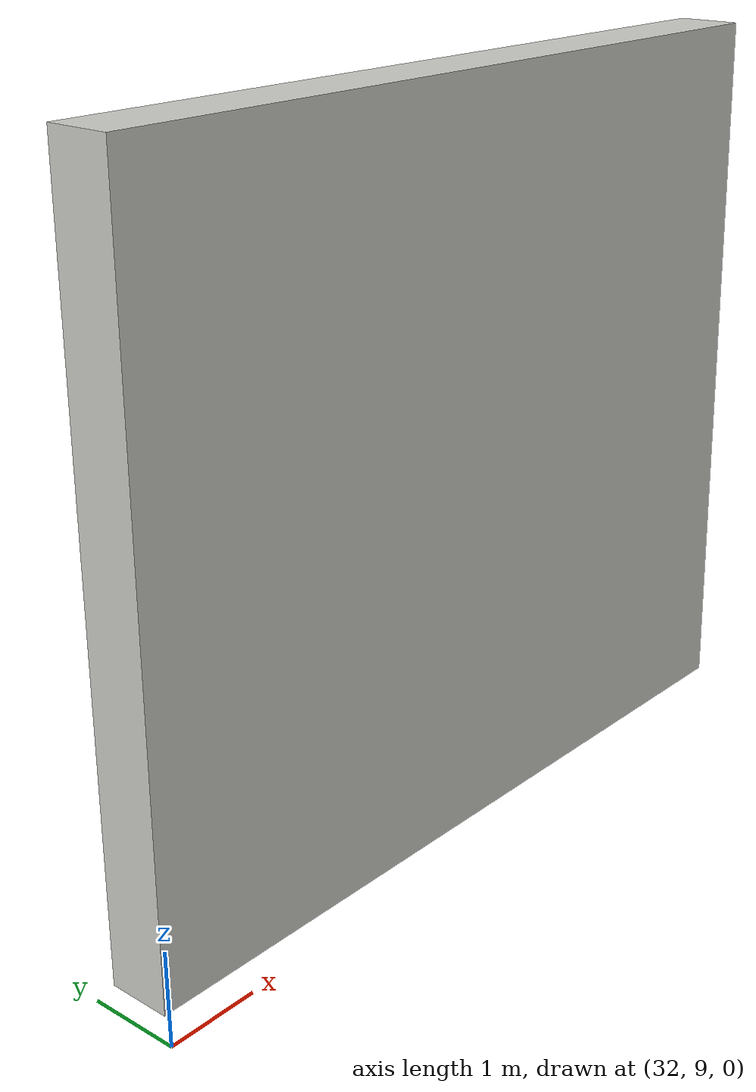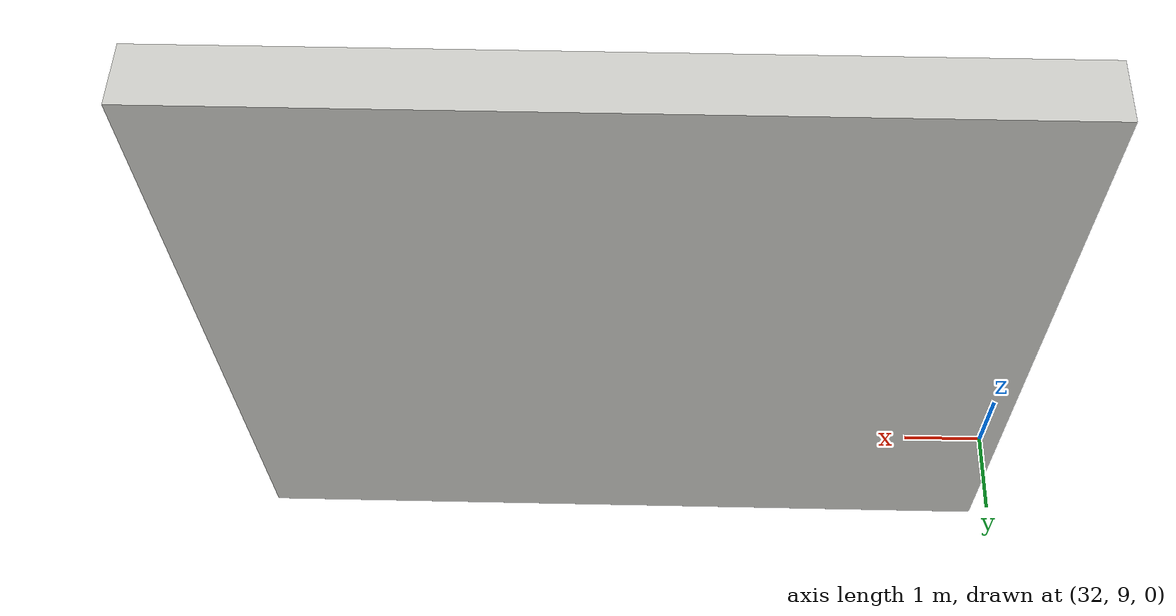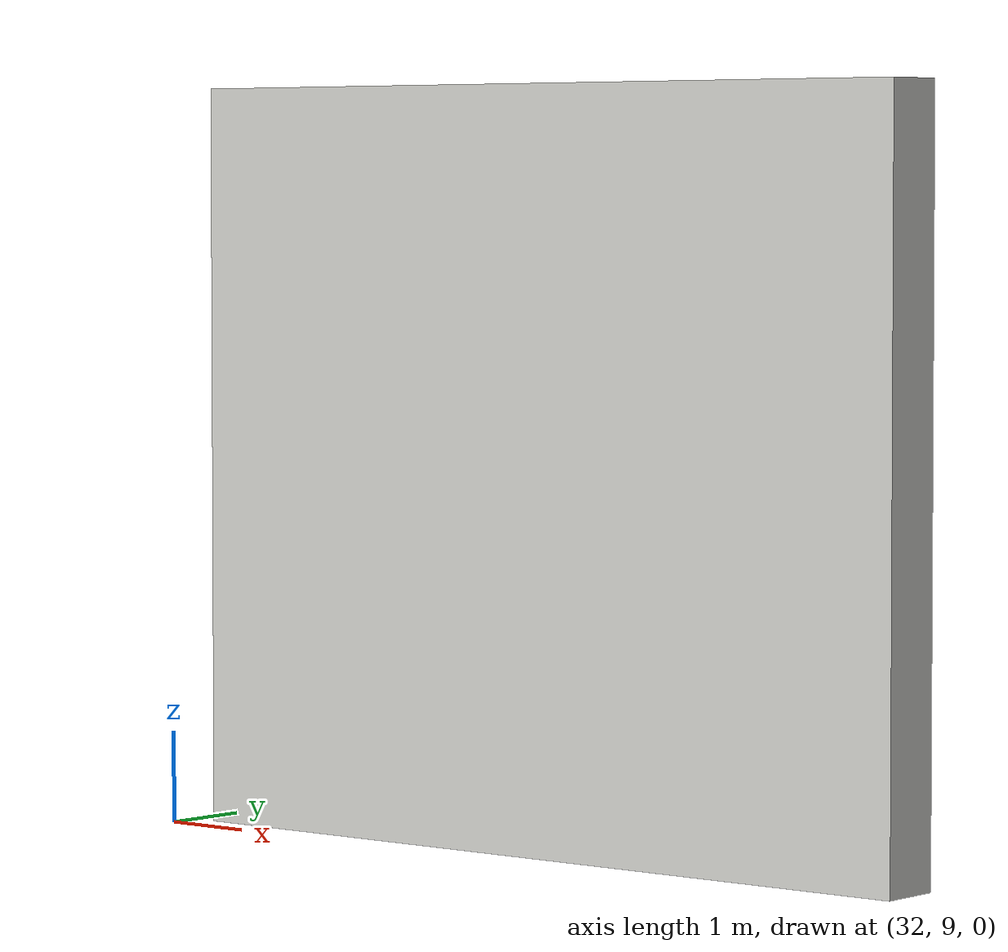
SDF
<?xml version='1.0'?>
<sdf version='1.7'>
  <model name='wall_short_9x8'>
    <pose>20.6228 5.03257 0 0 -0 0</pose>
    <link name='Wall_0'>
      <collision name='Wall_0_Collision'>
        <geometry>
          <box>
            <size>9 0.7 8</size>
          </box>
        </geometry>
        <pose>0 0 4 0 -0 0</pose>
      </collision>
      <visual name='Wall_0_Visual'>
        <pose>0 0 4 0 -0 0</pose>
        <geometry>
          <box>
            <size>9 0.7 8</size>
          </box>
        </geometry>
        <material>
          <script>
            <uri>file://media/materials/scripts/gazebo.material</uri>
            <name>Gazebo/CeilingTiled</name>
          </script>
          <ambient>1 1 1 1</ambient>
        </material>
        <meta>
          <layer>0</layer>
        </meta>
      </visual>
      <pose>16.1228 4.68257 0 0 -0 0</pose>
    </link>
    <static>1</static>
  </model>
</sdf>
